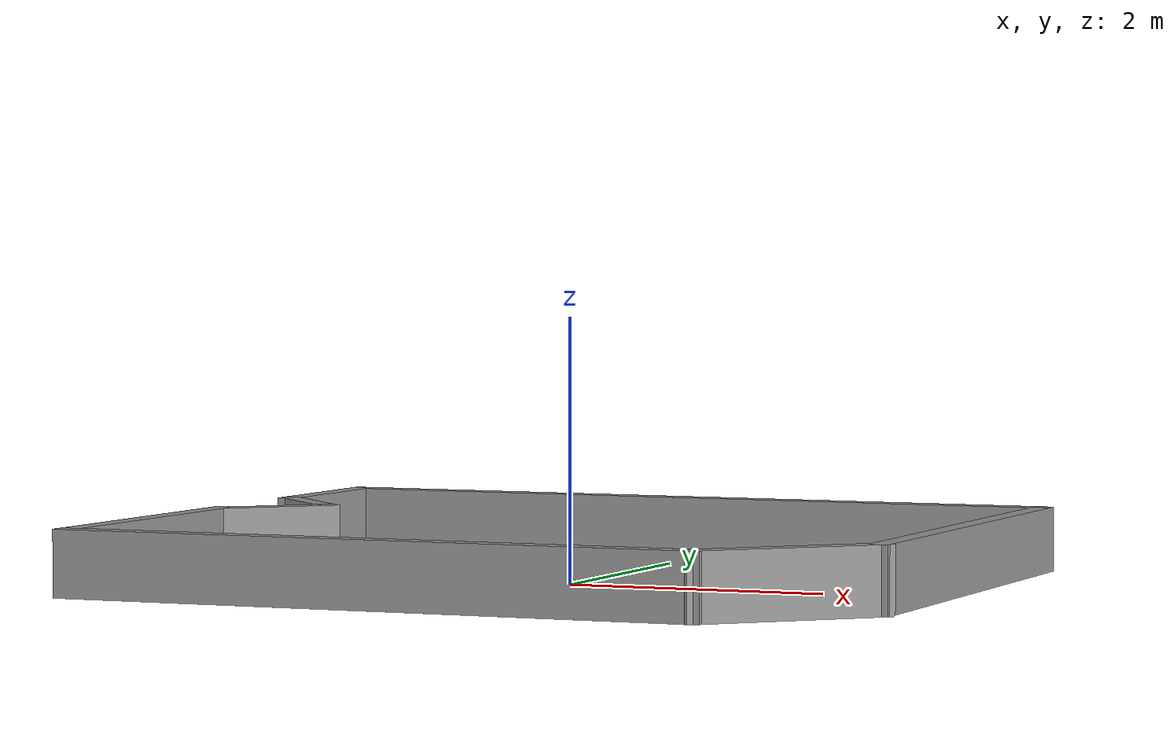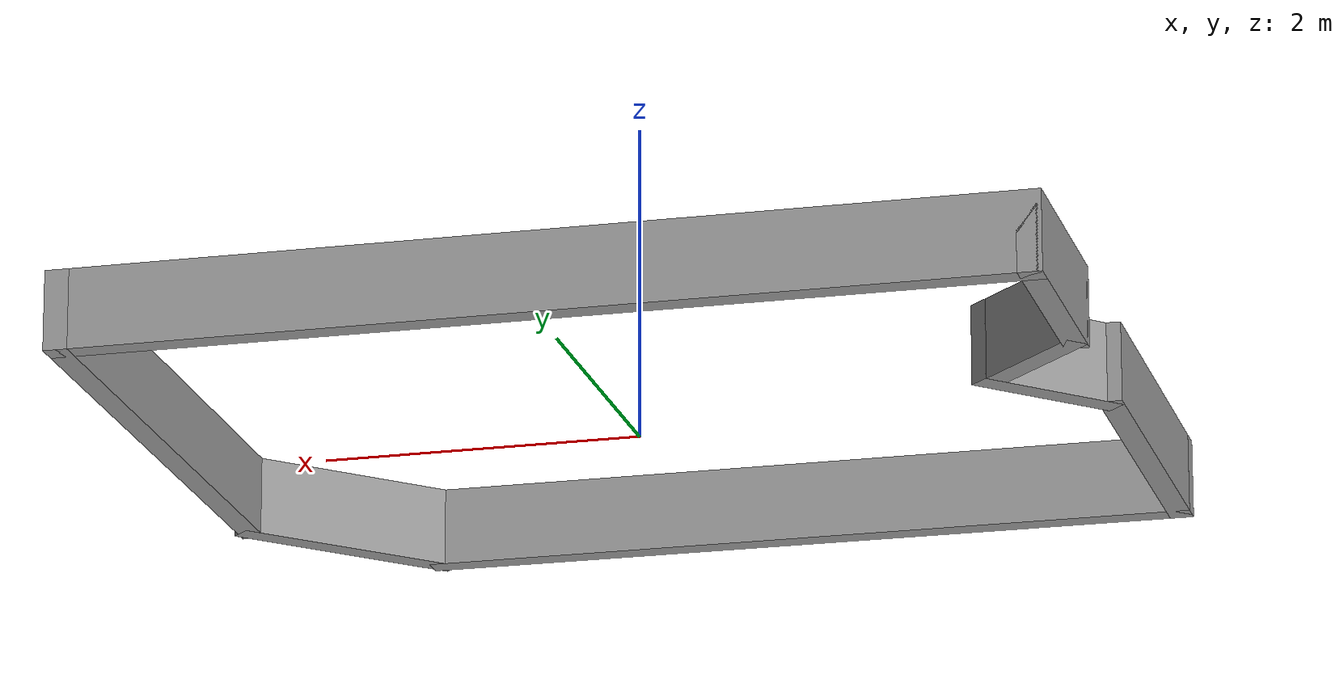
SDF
<?xml version='1.0'?>
<sdf version='1.7'>
  <model name='room_with_edge'>
    <link name='Wall_12'>
      <pose>-0.5 -2.40947 0.25 0 -0 0</pose>
      <self_collide>0</self_collide>
      <enable_wind>0</enable_wind>
      <kinematic>0</kinematic>
      <inertial>
        <inertia>
          <ixx>0</ixx>
          <ixy>0</ixy>
          <ixz>0</ixz>
          <iyy>0</iyy>
          <iyz>0</iyz>
          <izz>0</izz>
        </inertia>
        <mass>0</mass>
        <pose>0 0 0 0 -0 0</pose>
      </inertial>
      <gravity>1</gravity>
      <visual name='Wall_12_Visual'>
        <pose>0 0 0 0 -0 0</pose>
        <geometry>
          <box>
            <size>5 0.15 0.5</size>
          </box>
        </geometry>
        <material>
          <script>
            <uri>file://media/materials/scripts/gazebo.material</uri>
            <name>Gazebo/Grey</name>
          </script>
          <ambient>1 1 1 1</ambient>
          <shader type='pixel'>
            <normal_map>__default__</normal_map>
          </shader>
          <diffuse>0.7 0.7 0.7 1</diffuse>
          <specular>0.01 0.01 0.01 1</specular>
          <emissive>0 0 0 1</emissive>
        </material>
        <meta>
          <layer>0</layer>
        </meta>
        <transparency>0</transparency>
        <cast_shadows>1</cast_shadows>
      </visual>
      <collision name='Wall_12_Collision'>
        <laser_retro>0</laser_retro>
        <max_contacts>10</max_contacts>
        <pose>0 0 0 0 -0 0</pose>
        <geometry>
          <box>
            <size>5 0.15 0.5</size>
          </box>
        </geometry>
        <surface>
          <friction>
            <ode>
              <mu>1</mu>
              <mu2>1</mu2>
              <fdir1>0 0 0</fdir1>
              <slip1>0</slip1>
              <slip2>0</slip2>
            </ode>
            <torsional>
              <coefficient>1</coefficient>
              <patch_radius>0</patch_radius>
              <surface_radius>0</surface_radius>
              <use_patch_radius>1</use_patch_radius>
              <ode>
                <slip>0</slip>
              </ode>
            </torsional>
          </friction>
          <bounce>
            <restitution_coefficient>0</restitution_coefficient>
            <threshold>1e+06</threshold>
          </bounce>
          <contact>
            <collide_without_contact>0</collide_without_contact>
            <collide_without_contact_bitmask>1</collide_without_contact_bitmask>
            <collide_bitmask>1</collide_bitmask>
            <ode>
              <soft_cfm>0</soft_cfm>
              <soft_erp>0.2</soft_erp>
              <kp>1e+13</kp>
              <kd>1</kd>
              <max_vel>0.01</max_vel>
              <min_depth>0</min_depth>
            </ode>
            <bullet>
              <split_impulse>1</split_impulse>
              <split_impulse_penetration_threshold>-0.01</split_impulse_penetration_threshold>
              <soft_cfm>0</soft_cfm>
              <soft_erp>0.2</soft_erp>
              <kp>1e+13</kp>
              <kd>1</kd>
            </bullet>
          </contact>
        </surface>
      </collision>
    </link>
    <link name='Wall_13'>
      <pose>2.425 -1.90947 0.25 0 -0 0.785398</pose>
      <self_collide>0</self_collide>
      <enable_wind>0</enable_wind>
      <kinematic>0</kinematic>
      <inertial>
        <inertia>
          <ixx>0</ixx>
          <ixy>0</ixy>
          <ixz>0</ixz>
          <iyy>0</iyy>
          <iyz>0</iyz>
          <izz>0</izz>
        </inertia>
        <mass>0</mass>
        <pose>0 0 0 0 -0 0</pose>
      </inertial>
      <gravity>1</gravity>
      <visual name='Wall_13_Visual'>
        <pose>0 0 0 0 -0 0</pose>
        <geometry>
          <box>
            <size>1.56421 0.15 0.5</size>
          </box>
        </geometry>
        <material>
          <script>
            <uri>file://media/materials/scripts/gazebo.material</uri>
            <name>Gazebo/Grey</name>
          </script>
          <ambient>1 1 1 1</ambient>
          <shader type='pixel'>
            <normal_map>__default__</normal_map>
          </shader>
          <diffuse>0.7 0.7 0.7 1</diffuse>
          <specular>0.01 0.01 0.01 1</specular>
          <emissive>0 0 0 1</emissive>
        </material>
        <meta>
          <layer>0</layer>
        </meta>
        <transparency>0</transparency>
        <cast_shadows>1</cast_shadows>
      </visual>
      <collision name='Wall_13_Collision'>
        <laser_retro>0</laser_retro>
        <max_contacts>10</max_contacts>
        <pose>0 0 0 0 -0 0</pose>
        <geometry>
          <box>
            <size>1.56421 0.15 0.5</size>
          </box>
        </geometry>
        <surface>
          <friction>
            <ode>
              <mu>1</mu>
              <mu2>1</mu2>
              <fdir1>0 0 0</fdir1>
              <slip1>0</slip1>
              <slip2>0</slip2>
            </ode>
            <torsional>
              <coefficient>1</coefficient>
              <patch_radius>0</patch_radius>
              <surface_radius>0</surface_radius>
              <use_patch_radius>1</use_patch_radius>
              <ode>
                <slip>0</slip>
              </ode>
            </torsional>
          </friction>
          <bounce>
            <restitution_coefficient>0</restitution_coefficient>
            <threshold>1e+06</threshold>
          </bounce>
          <contact>
            <collide_without_contact>0</collide_without_contact>
            <collide_without_contact_bitmask>1</collide_without_contact_bitmask>
            <collide_bitmask>1</collide_bitmask>
            <ode>
              <soft_cfm>0</soft_cfm>
              <soft_erp>0.2</soft_erp>
              <kp>1e+13</kp>
              <kd>1</kd>
              <max_vel>0.01</max_vel>
              <min_depth>0</min_depth>
            </ode>
            <bullet>
              <split_impulse>1</split_impulse>
              <split_impulse_penetration_threshold>-0.01</split_impulse_penetration_threshold>
              <soft_cfm>0</soft_cfm>
              <soft_erp>0.2</soft_erp>
              <kp>1e+13</kp>
              <kd>1</kd>
            </bullet>
          </contact>
        </surface>
      </collision>
    </link>
    <link name='Wall_17'>
      <pose>-2.925 -1.23447 0.25 0 -0 1.5708</pose>
      <self_collide>0</self_collide>
      <enable_wind>0</enable_wind>
      <kinematic>0</kinematic>
      <inertial>
        <inertia>
          <ixx>0</ixx>
          <ixy>0</ixy>
          <ixz>0</ixz>
          <iyy>0</iyy>
          <iyz>0</iyz>
          <izz>0</izz>
        </inertia>
        <mass>0</mass>
        <pose>0 0 0 0 -0 0</pose>
      </inertial>
      <gravity>1</gravity>
      <visual name='Wall_17_Visual'>
        <pose>0 0 0 0 -0 0</pose>
        <geometry>
          <box>
            <size>2.5 0.15 0.5</size>
          </box>
        </geometry>
        <material>
          <script>
            <uri>file://media/materials/scripts/gazebo.material</uri>
            <name>Gazebo/Grey</name>
          </script>
          <ambient>1 1 1 1</ambient>
          <shader type='pixel'>
            <normal_map>__default__</normal_map>
          </shader>
          <diffuse>0.7 0.7 0.7 1</diffuse>
          <specular>0.01 0.01 0.01 1</specular>
          <emissive>0 0 0 1</emissive>
        </material>
        <meta>
          <layer>0</layer>
        </meta>
        <transparency>0</transparency>
        <cast_shadows>1</cast_shadows>
      </visual>
      <collision name='Wall_17_Collision'>
        <laser_retro>0</laser_retro>
        <max_contacts>10</max_contacts>
        <pose>0 0 0 0 -0 0</pose>
        <geometry>
          <box>
            <size>2.5 0.15 0.5</size>
          </box>
        </geometry>
        <surface>
          <friction>
            <ode>
              <mu>1</mu>
              <mu2>1</mu2>
              <fdir1>0 0 0</fdir1>
              <slip1>0</slip1>
              <slip2>0</slip2>
            </ode>
            <torsional>
              <coefficient>1</coefficient>
              <patch_radius>0</patch_radius>
              <surface_radius>0</surface_radius>
              <use_patch_radius>1</use_patch_radius>
              <ode>
                <slip>0</slip>
              </ode>
            </torsional>
          </friction>
          <bounce>
            <restitution_coefficient>0</restitution_coefficient>
            <threshold>1e+06</threshold>
          </bounce>
          <contact>
            <collide_without_contact>0</collide_without_contact>
            <collide_without_contact_bitmask>1</collide_without_contact_bitmask>
            <collide_bitmask>1</collide_bitmask>
            <ode>
              <soft_cfm>0</soft_cfm>
              <soft_erp>0.2</soft_erp>
              <kp>1e+13</kp>
              <kd>1</kd>
              <max_vel>0.01</max_vel>
              <min_depth>0</min_depth>
            </ode>
            <bullet>
              <split_impulse>1</split_impulse>
              <split_impulse_penetration_threshold>-0.01</split_impulse_penetration_threshold>
              <soft_cfm>0</soft_cfm>
              <soft_erp>0.2</soft_erp>
              <kp>1e+13</kp>
              <kd>1</kd>
            </bullet>
          </contact>
        </surface>
      </collision>
    </link>
    <link name='Wall_18'>
      <pose>-2.58858 0.231261 0.25 0 -0 0.785398</pose>
      <self_collide>0</self_collide>
      <enable_wind>0</enable_wind>
      <kinematic>0</kinematic>
      <inertial>
        <inertia>
          <ixx>0</ixx>
          <ixy>0</ixy>
          <ixz>0</ixz>
          <iyy>0</iyy>
          <iyz>0</iyz>
          <izz>0</izz>
        </inertia>
        <mass>0</mass>
        <pose>0 0 0 0 -0 0</pose>
      </inertial>
      <gravity>1</gravity>
      <visual name='Wall_18_Visual'>
        <pose>0 0 0 0 -0 0</pose>
        <geometry>
          <box>
            <size>1 0.15 0.5</size>
          </box>
        </geometry>
        <material>
          <script>
            <uri>file://media/materials/scripts/gazebo.material</uri>
            <name>Gazebo/Grey</name>
          </script>
          <ambient>1 1 1 1</ambient>
          <shader type='pixel'>
            <normal_map>__default__</normal_map>
          </shader>
          <diffuse>0.7 0.7 0.7 1</diffuse>
          <specular>0.01 0.01 0.01 1</specular>
          <emissive>0 0 0 1</emissive>
        </material>
        <meta>
          <layer>0</layer>
        </meta>
        <transparency>0</transparency>
        <cast_shadows>1</cast_shadows>
      </visual>
      <collision name='Wall_18_Collision'>
        <laser_retro>0</laser_retro>
        <max_contacts>10</max_contacts>
        <pose>0 0 0 0 -0 0</pose>
        <geometry>
          <box>
            <size>1 0.15 0.5</size>
          </box>
        </geometry>
        <surface>
          <friction>
            <ode>
              <mu>1</mu>
              <mu2>1</mu2>
              <fdir1>0 0 0</fdir1>
              <slip1>0</slip1>
              <slip2>0</slip2>
            </ode>
            <torsional>
              <coefficient>1</coefficient>
              <patch_radius>0</patch_radius>
              <surface_radius>0</surface_radius>
              <use_patch_radius>1</use_patch_radius>
              <ode>
                <slip>0</slip>
              </ode>
            </torsional>
          </friction>
          <bounce>
            <restitution_coefficient>0</restitution_coefficient>
            <threshold>1e+06</threshold>
          </bounce>
          <contact>
            <collide_without_contact>0</collide_without_contact>
            <collide_without_contact_bitmask>1</collide_without_contact_bitmask>
            <collide_bitmask>1</collide_bitmask>
            <ode>
              <soft_cfm>0</soft_cfm>
              <soft_erp>0.2</soft_erp>
              <kp>1e+13</kp>
              <kd>1</kd>
              <max_vel>0.01</max_vel>
              <min_depth>0</min_depth>
            </ode>
            <bullet>
              <split_impulse>1</split_impulse>
              <split_impulse_penetration_threshold>-0.01</split_impulse_penetration_threshold>
              <soft_cfm>0</soft_cfm>
              <soft_erp>0.2</soft_erp>
              <kp>1e+13</kp>
              <kd>1</kd>
            </bullet>
          </contact>
        </surface>
      </collision>
    </link>
    <link name='Wall_19'>
      <pose>-2.59522 0.831866 0.25 0 -0 2.35619</pose>
      <self_collide>0</self_collide>
      <enable_wind>0</enable_wind>
      <kinematic>0</kinematic>
      <inertial>
        <inertia>
          <ixx>0</ixx>
          <ixy>0</ixy>
          <ixz>0</ixz>
          <iyy>0</iyy>
          <iyz>0</iyz>
          <izz>0</izz>
        </inertia>
        <mass>0</mass>
        <pose>0 0 0 0 -0 0</pose>
      </inertial>
      <gravity>1</gravity>
      <visual name='Wall_19_Visual'>
        <pose>0 0 0 0 -0 0</pose>
        <geometry>
          <box>
            <size>1 0.15 0.5</size>
          </box>
        </geometry>
        <material>
          <script>
            <uri>file://media/materials/scripts/gazebo.material</uri>
            <name>Gazebo/Grey</name>
          </script>
          <ambient>1 1 1 1</ambient>
          <shader type='pixel'>
            <normal_map>__default__</normal_map>
          </shader>
          <diffuse>0.7 0.7 0.7 1</diffuse>
          <specular>0.01 0.01 0.01 1</specular>
          <emissive>0 0 0 1</emissive>
        </material>
        <meta>
          <layer>0</layer>
        </meta>
        <transparency>0</transparency>
        <cast_shadows>1</cast_shadows>
      </visual>
      <collision name='Wall_19_Collision'>
        <laser_retro>0</laser_retro>
        <max_contacts>10</max_contacts>
        <pose>0 0 0 0 -0 0</pose>
        <geometry>
          <box>
            <size>1 0.15 0.5</size>
          </box>
        </geometry>
        <surface>
          <friction>
            <ode>
              <mu>1</mu>
              <mu2>1</mu2>
              <fdir1>0 0 0</fdir1>
              <slip1>0</slip1>
              <slip2>0</slip2>
            </ode>
            <torsional>
              <coefficient>1</coefficient>
              <patch_radius>0</patch_radius>
              <surface_radius>0</surface_radius>
              <use_patch_radius>1</use_patch_radius>
              <ode>
                <slip>0</slip>
              </ode>
            </torsional>
          </friction>
          <bounce>
            <restitution_coefficient>0</restitution_coefficient>
            <threshold>1e+06</threshold>
          </bounce>
          <contact>
            <collide_without_contact>0</collide_without_contact>
            <collide_without_contact_bitmask>1</collide_without_contact_bitmask>
            <collide_bitmask>1</collide_bitmask>
            <ode>
              <soft_cfm>0</soft_cfm>
              <soft_erp>0.2</soft_erp>
              <kp>1e+13</kp>
              <kd>1</kd>
              <max_vel>0.01</max_vel>
              <min_depth>0</min_depth>
            </ode>
            <bullet>
              <split_impulse>1</split_impulse>
              <split_impulse_penetration_threshold>-0.01</split_impulse_penetration_threshold>
              <soft_cfm>0</soft_cfm>
              <soft_erp>0.2</soft_erp>
              <kp>1e+13</kp>
              <kd>1</kd>
            </bullet>
          </contact>
        </surface>
      </collision>
    </link>
    <link name='Wall_20'>
      <pose>-2.925 1.79157 0.25 0 -0 1.5708</pose>
      <self_collide>0</self_collide>
      <enable_wind>0</enable_wind>
      <kinematic>0</kinematic>
      <inertial>
        <inertia>
          <ixx>0</ixx>
          <ixy>0</ixy>
          <ixz>0</ixz>
          <iyy>0</iyy>
          <iyz>0</iyz>
          <izz>0</izz>
        </inertia>
        <mass>0</mass>
        <pose>0 0 0 0 -0 0</pose>
      </inertial>
      <gravity>1</gravity>
      <visual name='Wall_20_Visual'>
        <pose>0 0 0 0 -0 0</pose>
        <geometry>
          <box>
            <size>1.44792 0.15 0.5</size>
          </box>
        </geometry>
        <material>
          <script>
            <uri>file://media/materials/scripts/gazebo.material</uri>
            <name>Gazebo/Grey</name>
          </script>
          <ambient>1 1 1 1</ambient>
          <shader type='pixel'>
            <normal_map>__default__</normal_map>
          </shader>
          <diffuse>0.7 0.7 0.7 1</diffuse>
          <specular>0.01 0.01 0.01 1</specular>
          <emissive>0 0 0 1</emissive>
        </material>
        <meta>
          <layer>0</layer>
        </meta>
        <transparency>0</transparency>
        <cast_shadows>1</cast_shadows>
      </visual>
      <collision name='Wall_20_Collision'>
        <laser_retro>0</laser_retro>
        <max_contacts>10</max_contacts>
        <pose>0 0 0 0 -0 0</pose>
        <geometry>
          <box>
            <size>1.44792 0.15 0.5</size>
          </box>
        </geometry>
        <surface>
          <friction>
            <ode>
              <mu>1</mu>
              <mu2>1</mu2>
              <fdir1>0 0 0</fdir1>
              <slip1>0</slip1>
              <slip2>0</slip2>
            </ode>
            <torsional>
              <coefficient>1</coefficient>
              <patch_radius>0</patch_radius>
              <surface_radius>0</surface_radius>
              <use_patch_radius>1</use_patch_radius>
              <ode>
                <slip>0</slip>
              </ode>
            </torsional>
          </friction>
          <bounce>
            <restitution_coefficient>0</restitution_coefficient>
            <threshold>1e+06</threshold>
          </bounce>
          <contact>
            <collide_without_contact>0</collide_without_contact>
            <collide_without_contact_bitmask>1</collide_without_contact_bitmask>
            <collide_bitmask>1</collide_bitmask>
            <ode>
              <soft_cfm>0</soft_cfm>
              <soft_erp>0.2</soft_erp>
              <kp>1e+13</kp>
              <kd>1</kd>
              <max_vel>0.01</max_vel>
              <min_depth>0</min_depth>
            </ode>
            <bullet>
              <split_impulse>1</split_impulse>
              <split_impulse_penetration_threshold>-0.01</split_impulse_penetration_threshold>
              <soft_cfm>0</soft_cfm>
              <soft_erp>0.2</soft_erp>
              <kp>1e+13</kp>
              <kd>1</kd>
            </bullet>
          </contact>
        </surface>
      </collision>
    </link>
    <link name='Wall_3'>
      <pose>0 2.44053 0.25 0 -0 0</pose>
      <self_collide>0</self_collide>
      <enable_wind>0</enable_wind>
      <kinematic>0</kinematic>
      <inertial>
        <inertia>
          <ixx>0</ixx>
          <ixy>0</ixy>
          <ixz>0</ixz>
          <iyy>0</iyy>
          <iyz>0</iyz>
          <izz>0</izz>
        </inertia>
        <mass>0</mass>
        <pose>0 0 0 0 -0 0</pose>
      </inertial>
      <gravity>1</gravity>
      <visual name='Wall_3_Visual'>
        <pose>0 0 0 0 -0 0</pose>
        <geometry>
          <box>
            <size>6 0.15 0.5</size>
          </box>
        </geometry>
        <material>
          <script>
            <uri>file://media/materials/scripts/gazebo.material</uri>
            <name>Gazebo/Grey</name>
          </script>
          <ambient>1 1 1 1</ambient>
          <shader type='pixel'>
            <normal_map>__default__</normal_map>
          </shader>
          <diffuse>0.7 0.7 0.7 1</diffuse>
          <specular>0.01 0.01 0.01 1</specular>
          <emissive>0 0 0 1</emissive>
        </material>
        <meta>
          <layer>0</layer>
        </meta>
        <transparency>0</transparency>
        <cast_shadows>1</cast_shadows>
      </visual>
      <collision name='Wall_3_Collision'>
        <laser_retro>0</laser_retro>
        <max_contacts>10</max_contacts>
        <pose>0 0 0 0 -0 0</pose>
        <geometry>
          <box>
            <size>6 0.15 0.5</size>
          </box>
        </geometry>
        <surface>
          <friction>
            <ode>
              <mu>1</mu>
              <mu2>1</mu2>
              <fdir1>0 0 0</fdir1>
              <slip1>0</slip1>
              <slip2>0</slip2>
            </ode>
            <torsional>
              <coefficient>1</coefficient>
              <patch_radius>0</patch_radius>
              <surface_radius>0</surface_radius>
              <use_patch_radius>1</use_patch_radius>
              <ode>
                <slip>0</slip>
              </ode>
            </torsional>
          </friction>
          <bounce>
            <restitution_coefficient>0</restitution_coefficient>
            <threshold>1e+06</threshold>
          </bounce>
          <contact>
            <collide_without_contact>0</collide_without_contact>
            <collide_without_contact_bitmask>1</collide_without_contact_bitmask>
            <collide_bitmask>1</collide_bitmask>
            <ode>
              <soft_cfm>0</soft_cfm>
              <soft_erp>0.2</soft_erp>
              <kp>1e+13</kp>
              <kd>1</kd>
              <max_vel>0.01</max_vel>
              <min_depth>0</min_depth>
            </ode>
            <bullet>
              <split_impulse>1</split_impulse>
              <split_impulse_penetration_threshold>-0.01</split_impulse_penetration_threshold>
              <soft_cfm>0</soft_cfm>
              <soft_erp>0.2</soft_erp>
              <kp>1e+13</kp>
              <kd>1</kd>
            </bullet>
          </contact>
        </surface>
      </collision>
    </link>
    <link name='Wall_8'>
      <pose>2.925 0.515533 0.25 0 0 -1.5708</pose>
      <self_collide>0</self_collide>
      <enable_wind>0</enable_wind>
      <kinematic>0</kinematic>
      <inertial>
        <inertia>
          <ixx>0</ixx>
          <ixy>0</ixy>
          <ixz>0</ixz>
          <iyy>0</iyy>
          <iyz>0</iyz>
          <izz>0</izz>
        </inertia>
        <mass>0</mass>
        <pose>0 0 0 0 -0 0</pose>
      </inertial>
      <gravity>1</gravity>
      <visual name='Wall_8_Visual'>
        <pose>0 0 0 0 -0 0</pose>
        <geometry>
          <box>
            <size>4 0.15 0.5</size>
          </box>
        </geometry>
        <material>
          <script>
            <uri>file://media/materials/scripts/gazebo.material</uri>
            <name>Gazebo/Grey</name>
          </script>
          <ambient>1 1 1 1</ambient>
          <shader type='pixel'>
            <normal_map>__default__</normal_map>
          </shader>
          <diffuse>0.7 0.7 0.7 1</diffuse>
          <specular>0.01 0.01 0.01 1</specular>
          <emissive>0 0 0 1</emissive>
        </material>
        <meta>
          <layer>0</layer>
        </meta>
        <transparency>0</transparency>
        <cast_shadows>1</cast_shadows>
      </visual>
      <collision name='Wall_8_Collision'>
        <laser_retro>0</laser_retro>
        <max_contacts>10</max_contacts>
        <pose>0 0 0 0 -0 0</pose>
        <geometry>
          <box>
            <size>4 0.15 0.5</size>
          </box>
        </geometry>
        <surface>
          <friction>
            <ode>
              <mu>1</mu>
              <mu2>1</mu2>
              <fdir1>0 0 0</fdir1>
              <slip1>0</slip1>
              <slip2>0</slip2>
            </ode>
            <torsional>
              <coefficient>1</coefficient>
              <patch_radius>0</patch_radius>
              <surface_radius>0</surface_radius>
              <use_patch_radius>1</use_patch_radius>
              <ode>
                <slip>0</slip>
              </ode>
            </torsional>
          </friction>
          <bounce>
            <restitution_coefficient>0</restitution_coefficient>
            <threshold>1e+06</threshold>
          </bounce>
          <contact>
            <collide_without_contact>0</collide_without_contact>
            <collide_without_contact_bitmask>1</collide_without_contact_bitmask>
            <collide_bitmask>1</collide_bitmask>
            <ode>
              <soft_cfm>0</soft_cfm>
              <soft_erp>0.2</soft_erp>
              <kp>1e+13</kp>
              <kd>1</kd>
              <max_vel>0.01</max_vel>
              <min_depth>0</min_depth>
            </ode>
            <bullet>
              <split_impulse>1</split_impulse>
              <split_impulse_penetration_threshold>-0.01</split_impulse_penetration_threshold>
              <soft_cfm>0</soft_cfm>
              <soft_erp>0.2</soft_erp>
              <kp>1e+13</kp>
              <kd>1</kd>
            </bullet>
          </contact>
        </surface>
      </collision>
    </link>
    <static>1</static>
    <allow_auto_disable>1</allow_auto_disable>
  </model>
</sdf>
